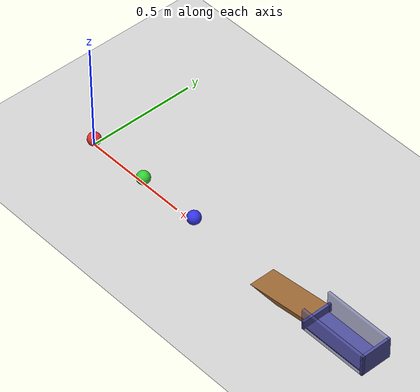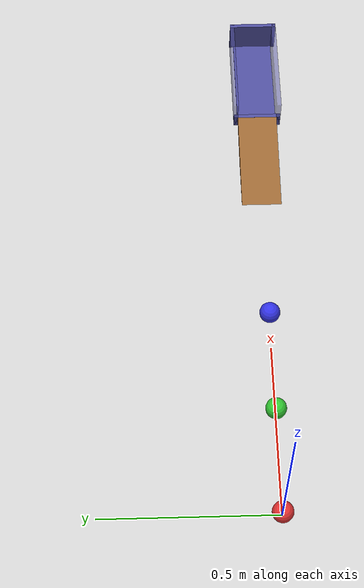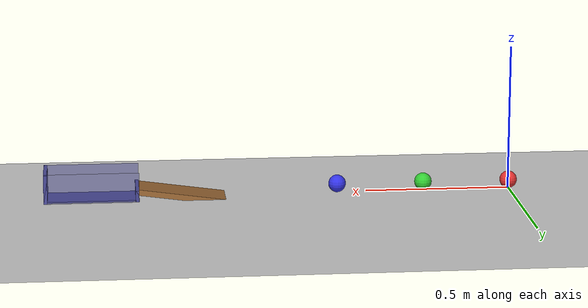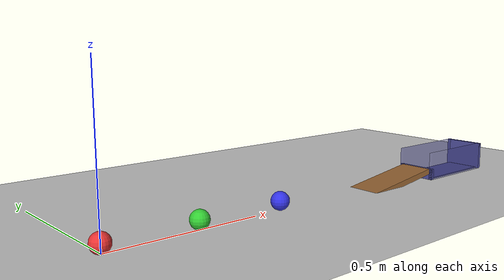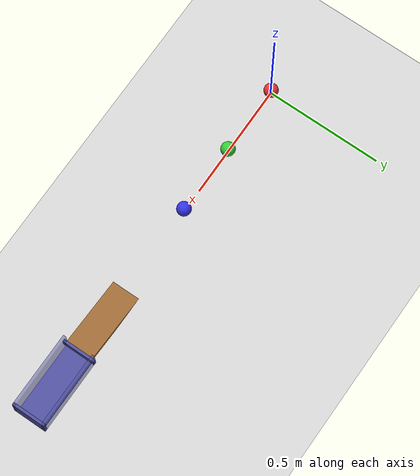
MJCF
<mujoco model="three_ball_chain_cup">
  <option timestep="0.002"/>
  <worldbody>
    <light name="sun" pos="0.8 -1 2" dir="0 0.5 -1"/>
    <geom name="floor" type="plane" size="3 3 0.1" contype="0" conaffinity="2" rgba="0.8 0.8 0.8 1"/>

    <body name="ball1" pos="0 0 0.03">
      <freejoint name="ball1_free"/>
      <geom name="ball1_geom" type="sphere" size="0.03" contype="2" conaffinity="0" rgba="0.9 0.2 0.2 1"/>
    </body>
    <body name="ball2" pos="0.3 0 0.03">
      <freejoint name="ball2_free"/>
      <geom name="ball2_geom" type="sphere" size="0.03" contype="2" conaffinity="0" rgba="0.2 0.8 0.2 1"/>
    </body>
    <body name="ball3" pos="0.6 0 0.03">
      <freejoint name="ball3_free"/>
      <geom name="ball3_geom" type="sphere" size="0.03" contype="2" conaffinity="0" rgba="0.2 0.2 0.9 1"/>
    </body>

    <body name="ramp" pos="0 0 0">
      <geom name="ramp_geom" type="box" size="0.18 0.06 0.01" pos="1.1081 0 0.00505" euler="0 -8 0" contype="0" conaffinity="2" rgba="0.6 0.4 0.2 1"/>
    </body>

    <body name="cup" pos="0 0 0">
      <geom name="cup_front" type="box" size="0.006 0.072 0.02" pos="1.291 0 0.02" contype="0" conaffinity="2" rgba="0.3 0.3 0.6 1"/>
      <geom name="cup_base" type="box" size="0.15 0.06 0.002" pos="1.447 0 0.002" contype="0" conaffinity="2" rgba="0.3 0.3 0.6 1"/>
      <geom name="cup_back" type="box" size="0.006 0.072 0.05" pos="1.603 0 0.05" contype="0" conaffinity="2" rgba="0.3 0.3 0.6 1"/>
      <geom name="cup_left" type="box" size="0.162 0.006 0.05" pos="1.447 0.066 0.05" contype="0" conaffinity="2" rgba="0.3 0.3 0.6 0.5"/>
      <geom name="cup_right" type="box" size="0.162 0.006 0.05" pos="1.447 -0.066 0.05" contype="0" conaffinity="2" rgba="0.3 0.3 0.6 0.5"/>
    </body>
  </worldbody>

  <contact>
    <pair name="pair12" geom1="ball1_geom" geom2="ball2_geom" solref="0.05 0.05" friction="0.5 0.5 0.005 0.0001 0.0001"/>
    <pair name="pair23" geom1="ball2_geom" geom2="ball3_geom" solref="0.05 0.05" friction="0.5 0.5 0.005 0.0001 0.0001"/>
    <pair name="pair13" geom1="ball1_geom" geom2="ball3_geom" solref="0.05 0.05" friction="0.5 0.5 0.005 0.0001 0.0001"/>
  </contact>

  <keyframe>
    <key name="start" qpos="0 0 0.03 1 0 0 0  0.3 0 0.03 1 0 0 0  0.6 0 0.03 1 0 0 0" qvel="3.5 0 0 0 116.67 0  0 0 0 0 0 0  0 0 0 0 0 0"/>
  </keyframe>
</mujoco>
